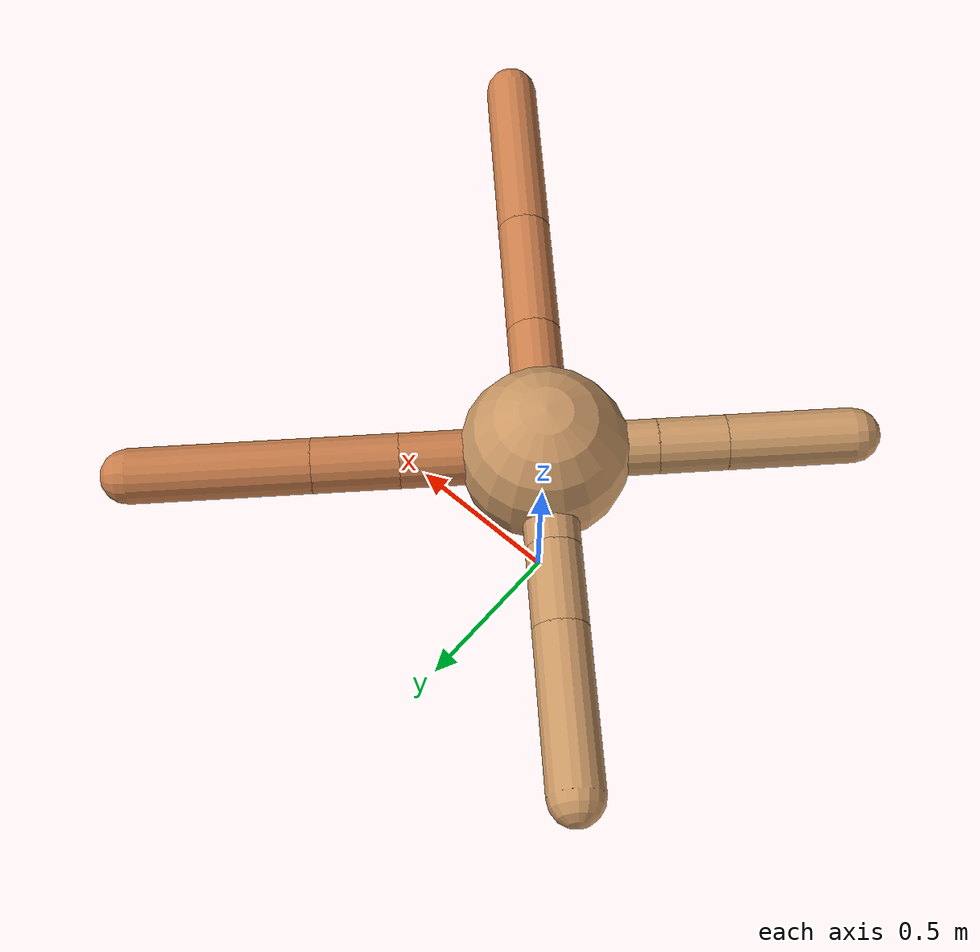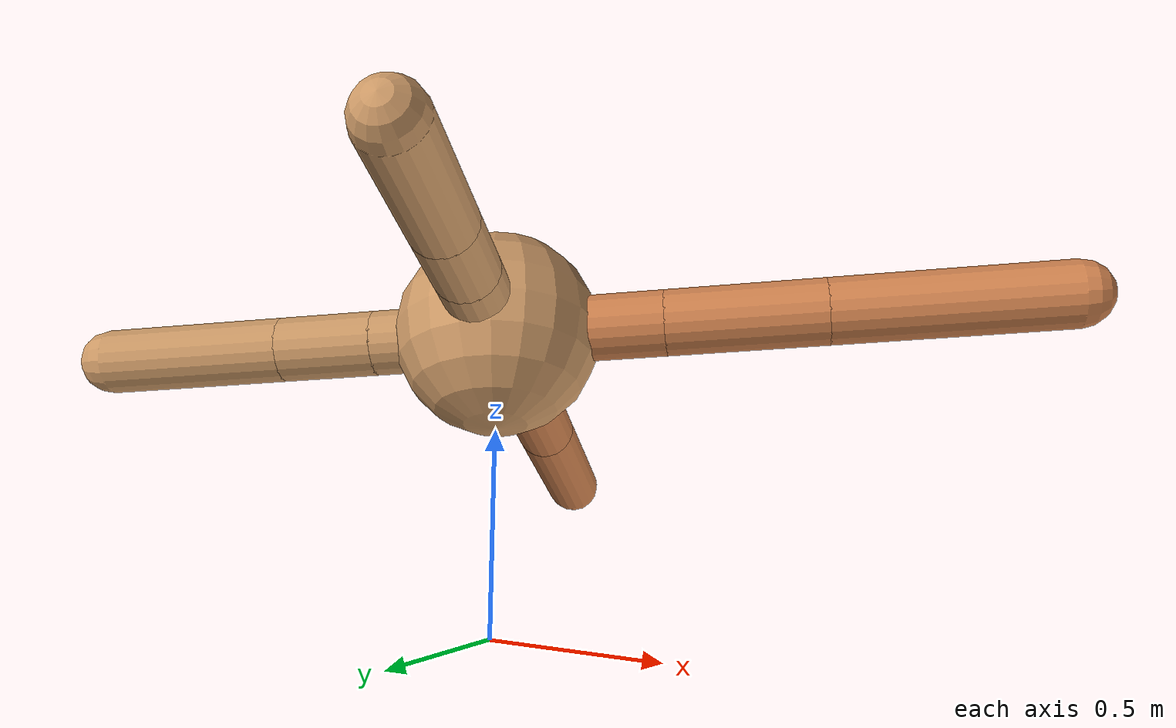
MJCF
<mujoco model="ant">
  <compiler angle="degree" coordinate="local" inertiafromgeom="true" />
  <option integrator="RK4" timestep="0.01" />
  <custom>
    <numeric data="0.0 0.0 0.55 1.0 0.0 0.0 0.0 0.0 1.0 0.0 -1.0 0.0 -1.0 0.0 1.0" name="init_qpos" />
  </custom>
  <default>
    <joint armature="1" damping="1" limited="true" />
    <geom conaffinity="0" condim="3" density="5.0" friction="1.5 0.1 0.1" margin="0.01" rgba="0.8 0.6 0.4 1" />
  </default>
  <worldbody>
    <body name="torso" pos="0 0 0.75">
      <geom name="torso_geom" pos="0 0 0" size="0.25" type="sphere" />

      <body name="front_left_leg" pos="0 0 0">
        <geom fromto="0.0 0.0 0.0 0.2938624943508415 0.2938624943508415 0.0" name="aux_1_geom" size="0.08" type="capsule" rgba=".8 .5 .3 1" />
        <body name="aux_1" pos="0.2938624943508415 0.2938624943508415 0.0">
          <joint axis="0 0 1" name="hip_1" pos="0.0 0.0 0.0" range="-40 40" type="hinge" />
          <geom fromto="0.0 0.0 0.0 0.17760238237534665 0.17760238237534665 0.0" name="left_leg_geom" size="0.08" type="capsule" rgba=".8 .5 .3 1" />
          <body pos="0.17760238237534665 0.17760238237534665 0.0" name="front_left_foot">
            <joint axis="-1 1 0" name="ankle_1" pos="0.0 0.0 0.0" range="30 100" type="hinge" />
            <geom fromto="0.0 0.0 0.0 0.36960042250203456 0.36960042250203456 0.0" name="left_ankle_geom" size="0.08" type="capsule" rgba=".8 .5 .3 1" />
          </body>
        </body>
      </body>
      <body name="front_right_leg" pos="0 0 0">
        <geom fromto="0.0 0.0 0.0 -0.2163806642149984 0.2163806642149984 0.0" name="aux_2_geom" size="0.08" type="capsule" />
        <body name="aux_2" pos="-0.2163806642149984 0.2163806642149984 0.0">
          <joint axis="0 0 1" name="hip_2" pos="0.0 0.0 0.0" range="-40 40" type="hinge" />
          <geom fromto="0.0 0.0 0.0 -0.17009989030823908 0.17009989030823908 0.0" name="right_leg_geom" size="0.08" type="capsule" />
          <body pos="-0.17009989030823908 0.17009989030823908 0.0" name="front_right_foot">
            <joint axis="1 1 0" name="ankle_2" pos="0.0 0.0 0.0" range="-100 -30" type="hinge" />
            <geom fromto="0.0 0.0 0.0 -0.32613529778454503 0.32613529778454503 0.0" name="right_ankle_geom" size="0.08" type="capsule" />
          </body>
        </body>
      </body>
      <body name="left_back_leg" pos="0 0 0">
        <geom fromto="0.0 0.0 0.0 -0.22952795368674078 -0.22952795368674078 0.0" name="aux_3_geom" size="0.08" type="capsule" />
        <body name="aux_3" pos="-0.22952795368674078 -0.22952795368674078 0.0">
          <joint axis="0 0 1" name="hip_3" pos="0.0 0.0 0.0" range="-40 40" type="hinge" />
          <geom fromto="0.0 0.0 0.0 -0.14052329728803833 -0.14052329728803833 0.0" name="back_leg_geom" size="0.08" type="capsule" />
          <body pos="-0.14052329728803833 -0.14052329728803833 0.0" name="left_back_foot">
            <joint axis="-1 1 0" name="ankle_3" pos="0.0 0.0 0.0" range="-100 -30" type="hinge" />
            <geom fromto="0.0 0.0 0.0 -0.2607121656222438 -0.2607121656222438 0.0" name="third_ankle_geom" size="0.08" type="capsule" />
          </body>
        </body>
      </body>
      <body name="right_back_leg" pos="0 0 0">
        <geom fromto="0.0 0.0 0.0 0.2910959201008213 -0.2910959201008213 0.0" name="aux_4_geom" size="0.08" type="capsule" rgba=".8 .5 .3 1" />
        <body name="aux_4" pos="0.2910959201008213 -0.2910959201008213 0.0">
          <joint axis="0 0 1" name="hip_4" pos="0.0 0.0 0.0" range="-40 40" type="hinge" />
          <geom fromto="0.0 0.0 0.0 0.2698562128910294 -0.2698562128910294 0.0" name="rightback_leg_geom" size="0.08" type="capsule" rgba=".8 .5 .3 1" />
          <body pos="0.2698562128910294 -0.2698562128910294 0.0" name="right_back_foot">
            <joint axis="1 1 0" name="ankle_4" pos="0.0 0.0 0.0" range="30 100" type="hinge" />
            <geom fromto="0.0 0.0 0.0 0.3972304434021986 -0.3972304434021986 0.0" name="fourth_ankle_geom" size="0.08" type="capsule" rgba=".8 .5 .3 1" />
          </body>
        </body>
      </body>
    </body>
  </worldbody>
  <actuator>
    <motor ctrllimited="true" ctrlrange="-1.0 1.0" joint="hip_4" gear="150" />
    <motor ctrllimited="true" ctrlrange="-1.0 1.0" joint="ankle_4" gear="150" />
    <motor ctrllimited="true" ctrlrange="-1.0 1.0" joint="hip_1" gear="150" />
    <motor ctrllimited="true" ctrlrange="-1.0 1.0" joint="ankle_1" gear="150" />
    <motor ctrllimited="true" ctrlrange="-1.0 1.0" joint="hip_2" gear="150" />
    <motor ctrllimited="true" ctrlrange="-1.0 1.0" joint="ankle_2" gear="150" />
    <motor ctrllimited="true" ctrlrange="-1.0 1.0" joint="hip_3" gear="150" />
    <motor ctrllimited="true" ctrlrange="-1.0 1.0" joint="ankle_3" gear="150" />
  </actuator>
</mujoco>
